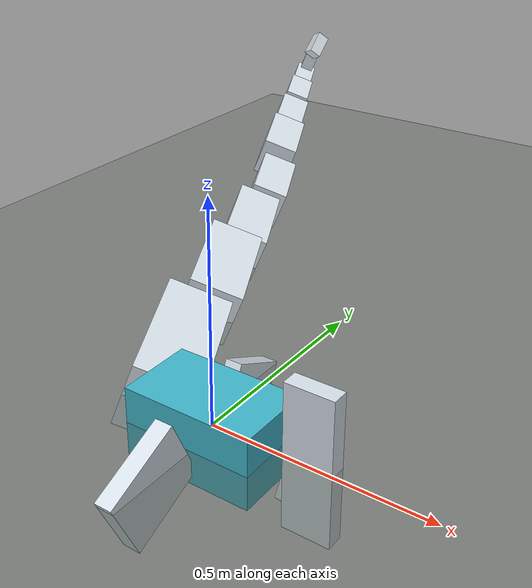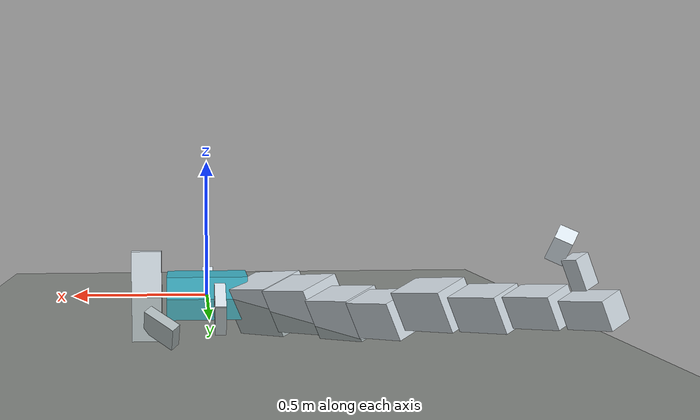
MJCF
<mujoco model="criatura">
  <compiler angle="degree" autolimits="true"/>
  <option timestep="0.002083" gravity="0 0 -9.81" integrator="implicitfast"/>
  <default>
    <geom type="box" density="300.0" rgba="0.85 0.89 0.92 1"/>
    <joint type="hinge"/>
    <motor ctrlrange="-1 1"/>
  </default>
  <worldbody>
    <geom name="suelo" type="plane" size="0 0 1" friction="1 0.005 0.0001" rgba="0.3 0.35 0.3 1"/>
    <body name="p0_n0" pos="0.00000 0.00000 0.00000" quat="1.000000 0.000000 0.000000 0.000000">
      <freejoint name="raiz"/>
      <geom name="g_p0_n0" size="0.15000 0.09000 0.08000" rgba="0.25 0.72 0.8 1"/>
      <body name="p1_n3" pos="0.22583 0.01710 0.00000" quat="1.000000 0.000000 0.000000 0.000000">
        <joint name="p1_n3_j0" axis="0.0000 0.0000 1.0000" pos="-0.07583 0 0" range="-35.00 35.00" damping="0.2040"/>
        <geom name="g_p1_n3" size="0.05583 0.02000 0.17000"/>
        <body name="p2_n4" pos="-0.05555 0.06251 -0.11074" quat="0.319553 0.124291 0.840555 0.419411">
          <joint name="p2_n4_j0" axis="0.0000 1.0000 0.0000" pos="-0.08912 0 0" range="-40.00 40.00" damping="0.0664"/>
          <joint name="p2_n4_j1" axis="0.0000 0.0000 1.0000" pos="-0.08912 0 0" range="-40.00 40.00" damping="0.0664"/>
          <geom name="g_p2_n4" size="0.06912 0.05530 0.02000"/>
        </body>
      </body>
      <body name="p3_n2" pos="-0.04500 0.17525 -0.02375" quat="0.596368 0.379928 0.596368 0.379928">
        <joint name="p3_n2_j0" axis="0.0000 1.0000 0.0000" pos="-0.09406 0 0" range="-38.10 38.10" damping="0.0744"/>
        <joint name="p3_n2_j1" axis="0.0000 0.0000 1.0000" pos="-0.09406 0 0" range="-38.10 38.10" damping="0.0744"/>
        <geom name="g_p3_n2" size="0.07406 0.06201 0.02000"/>
      </body>
      <body name="p4_n2" pos="-0.00424 -0.19473 -0.02389" quat="0.596368 -0.379928 0.596368 -0.379928">
        <joint name="p4_n2_j0" axis="0.0000 -1.0000 0.0000" pos="-0.11555 0 0" range="-38.10 38.10" damping="0.0960"/>
        <joint name="p4_n2_j1" axis="0.0000 0.0000 1.0000" pos="-0.11555 0 0" range="-38.10 38.10" damping="0.0960"/>
        <geom name="g_p4_n2" size="0.09555 0.08000 0.02000"/>
      </body>
      <body name="p5_n1" pos="-0.22429 0.14992 -0.00801" quat="0.255078 0.475058 0.671420 0.508379">
        <joint name="p5_n1_j0" axis="0.0000 0.0000 1.0000" pos="-0.17751 0 0" range="-76.39 76.39" damping="0.4294"/>
        <geom name="g_p5_n1" size="0.15751 0.09087 0.07876"/>
        <body name="p6_n1" pos="0.31139 0.01623 0.03247" quat="1.000000 0.000000 0.000000 0.000000">
          <joint name="p6_n1_j0" axis="0.0000 0.0000 1.0000" pos="-0.15388 0 0" range="-76.39 76.39" damping="0.3102"/>
          <geom name="g_p6_n1" size="0.13388 0.07724 0.06694"/>
          <body name="p7_n1" pos="0.26769 -0.01380 0.02760" quat="1.000000 0.000000 0.000000 0.000000">
            <joint name="p7_n1_j0" axis="0.0000 0.0000 1.0000" pos="-0.13380 0 0" range="-76.39 76.39" damping="0.2241"/>
            <geom name="g_p7_n1" size="0.11380 0.06565 0.05690"/>
            <body name="p8_n1" pos="0.23053 0.01173 0.02346" quat="1.000000 0.000000 0.000000 0.000000">
              <joint name="p8_n1_j0" axis="0.0000 0.0000 1.0000" pos="-0.11673 0 0" range="-76.39 76.39" damping="0.1619"/>
              <geom name="g_p8_n1" size="0.09673 0.05581 0.04837"/>
              <body name="p9_n5" pos="0.21346 0.02651 -0.01293" quat="1.000000 0.000000 0.000000 0.000000">
                <joint name="p9_n5_j0" axis="0.0000 0.0000 1.0000" pos="-0.11673 0 0" range="-76.39 76.39" damping="0.1619"/>
                <geom name="g_p9_n5" size="0.09673 0.05581 0.04837"/>
                <body name="p10_n5" pos="0.19895 -0.00729 0.00000" quat="1.000000 0.000000 0.000000 0.000000">
                  <joint name="p10_n5_j0" axis="0.0000 0.0000 1.0000" pos="-0.10222 0 0" range="-76.39 76.39" damping="0.1170"/>
                  <geom name="g_p10_n5" size="0.08222 0.04744 0.04111"/>
                  <body name="p11_n5" pos="0.17211 0.00620 0.00000" quat="1.000000 0.000000 0.000000 0.000000">
                    <joint name="p11_n5_j0" axis="0.0000 0.0000 1.0000" pos="-0.08989 0 0" range="-76.39 76.39" damping="0.0845"/>
                    <geom name="g_p11_n5" size="0.06989 0.04032 0.03494"/>
                    <body name="p12_n5" pos="0.14929 -0.00527 0.00000" quat="1.000000 0.000000 0.000000 0.000000">
                      <joint name="p12_n5_j0" axis="0.0000 0.0000 1.0000" pos="-0.07941 0 0" range="-76.39 76.39" damping="0.0611"/>
                      <geom name="g_p12_n5" size="0.05941 0.03427 0.02970"/>
                      <body name="p13_n6" pos="0.00000 0.08999 0.00000" quat="0.500000 -0.500000 -0.500000 0.500000">
                        <joint name="p13_n6_j0" axis="0.0000 -1.0000 0.0000" pos="-0.05572 0 0" range="-40.00 40.00" damping="0.0240"/>
                        <joint name="p13_n6_j1" axis="0.0000 0.0000 1.0000" pos="-0.05572 0 0" range="-40.00 40.00" damping="0.0240"/>
                        <geom name="g_p13_n6" size="0.03572 0.02000 0.02000"/>
                        <body name="p14_n7" pos="0.06237 -0.00096 0.02321" quat="0.912276 0.029742 -0.355430 -0.201340">
                          <joint name="p14_n7_j0" axis="1.0000 0.0000 0.0000" pos="-0.04000 0 0" range="-35.00 35.00" damping="0.0240"/>
                          <geom name="g_p14_n7" size="0.02000 0.02000 0.03710"/>
                        </body>
                      </body>
                    </body>
                  </body>
                </body>
              </body>
            </body>
          </body>
        </body>
      </body>
    </body>
  </worldbody>
  <actuator>
    <motor name="m_p1_n3_j0" joint="p1_n3_j0" gear="4.0800"/>
    <motor name="m_p2_n4_j0" joint="p2_n4_j0" gear="1.3271"/>
    <motor name="m_p2_n4_j1" joint="p2_n4_j1" gear="1.3271"/>
    <motor name="m_p3_n2_j0" joint="p3_n2_j0" gear="1.4882"/>
    <motor name="m_p3_n2_j1" joint="p3_n2_j1" gear="1.4882"/>
    <motor name="m_p4_n2_j0" joint="p4_n2_j0" gear="-1.9200"/>
    <motor name="m_p4_n2_j1" joint="p4_n2_j1" gear="-1.9200"/>
    <motor name="m_p5_n1_j0" joint="p5_n1_j0" gear="-8.5879"/>
    <motor name="m_p6_n1_j0" joint="p6_n1_j0" gear="6.2048"/>
    <motor name="m_p7_n1_j0" joint="p7_n1_j0" gear="-4.4830"/>
    <motor name="m_p8_n1_j0" joint="p8_n1_j0" gear="3.2389"/>
    <motor name="m_p9_n5_j0" joint="p9_n5_j0" gear="3.2389"/>
    <motor name="m_p10_n5_j0" joint="p10_n5_j0" gear="-2.3401"/>
    <motor name="m_p11_n5_j0" joint="p11_n5_j0" gear="1.6907"/>
    <motor name="m_p12_n5_j0" joint="p12_n5_j0" gear="-1.2216"/>
    <motor name="m_p13_n6_j0" joint="p13_n6_j0" gear="-0.4800"/>
    <motor name="m_p13_n6_j1" joint="p13_n6_j1" gear="-0.4800"/>
    <motor name="m_p14_n7_j0" joint="p14_n7_j0" gear="-0.4800"/>
  </actuator>
</mujoco>
